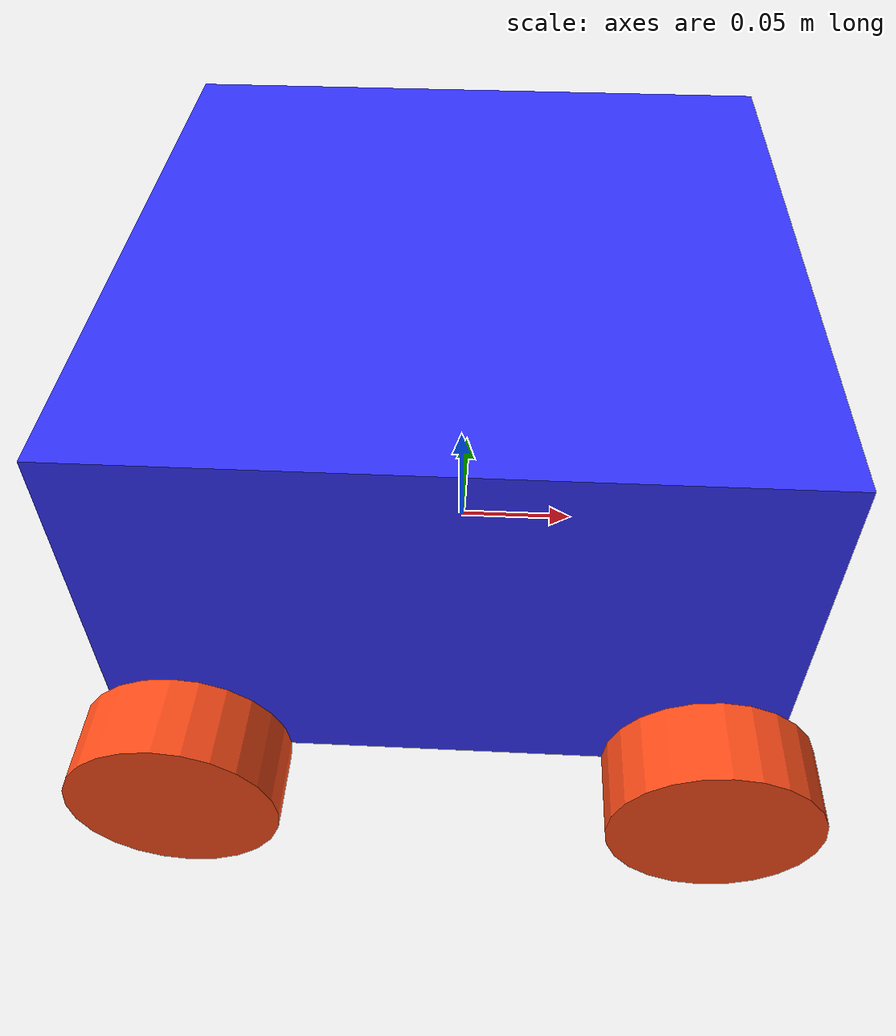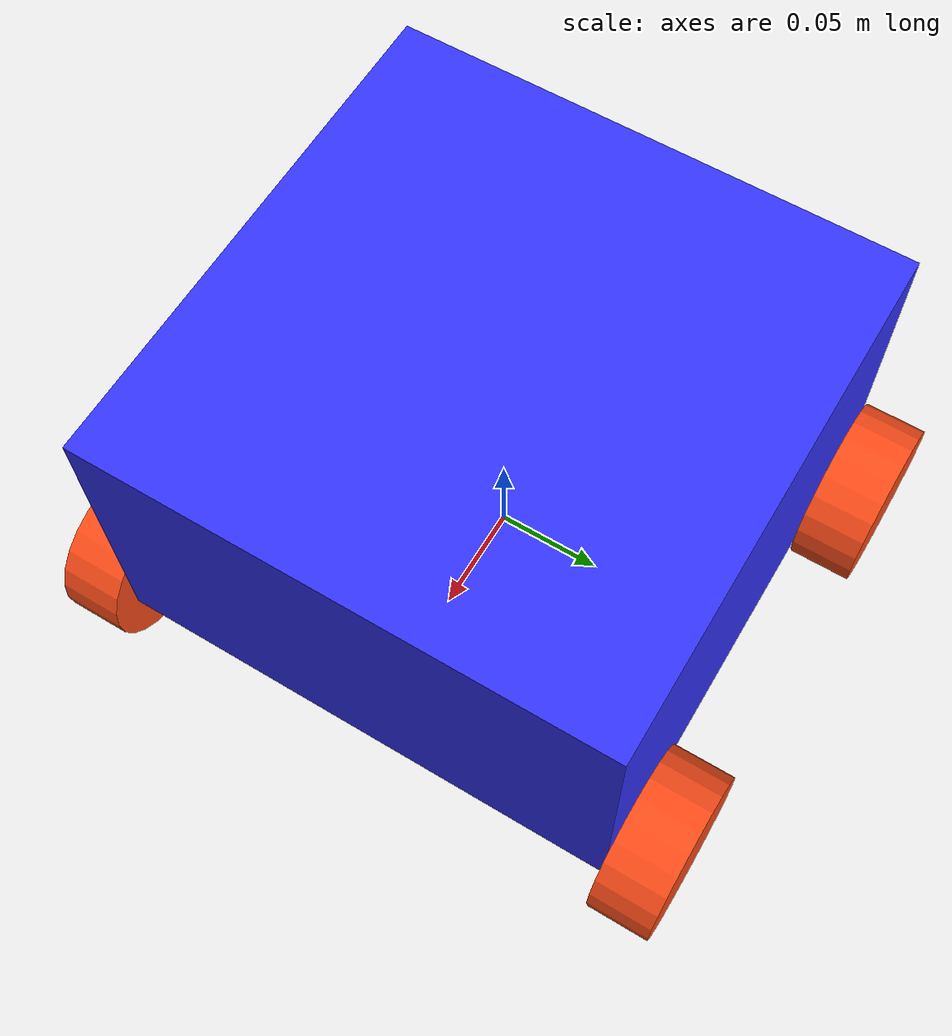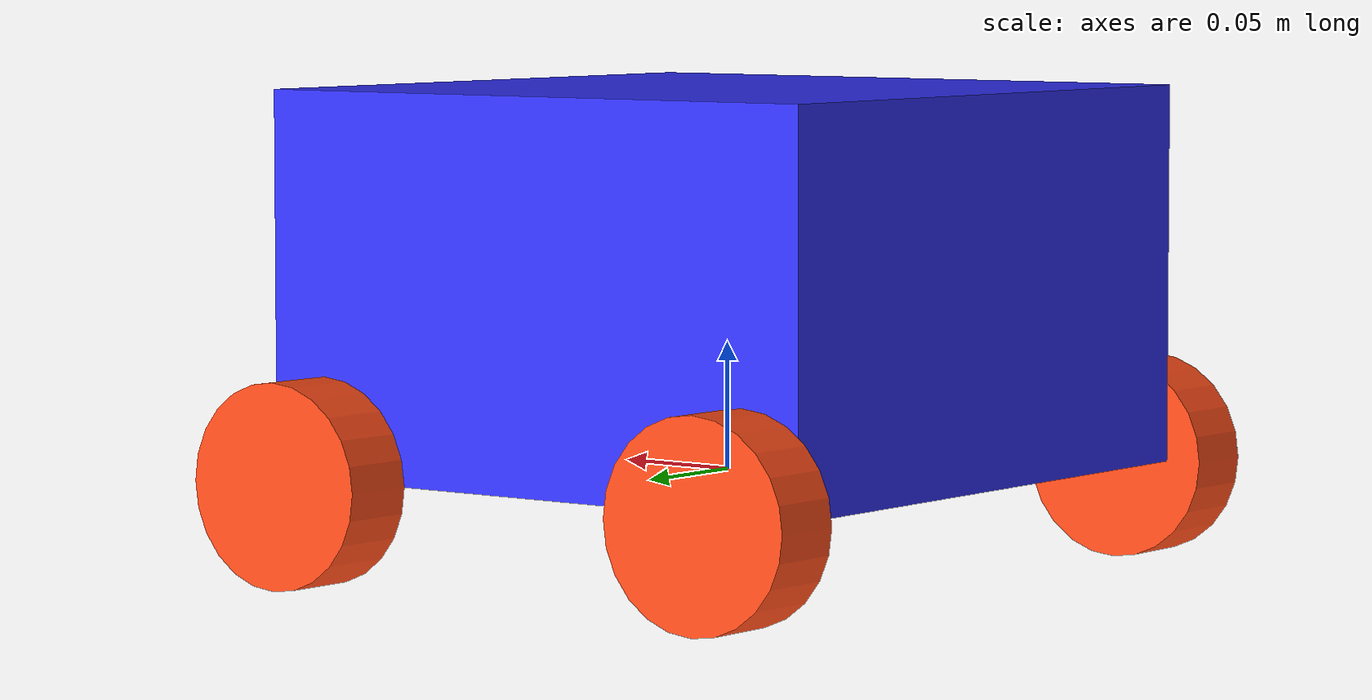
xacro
<?xml version="1.0"?>
<robot xmlns:xacro="http://www.ros.org/wiki/xacro">

    <xacro:include filename="inertial_macros.xacro"/>

    <material name="white">
        <color rgba="1 1 1 1" />
    </material>

    <material name="orange">
        <color rgba="1 0.3 0.1 1"/>
    </material>

    <material name="blue">
        <color rgba="0.2 0.2 1 1"/>
    </material>

    <material name="black">
        <color rgba="0 0 0 1"/>
    </material>

    <!-- BASE LINK -->

    <link name="base_link">

    </link>

    <joint name="base_footprint_joint" type="fixed">
        <parent link="base_link"/>
        <child link="base_footprint"/>
        <origin xyz="0 0 0" rpy="0 0 0"/>
    </joint>

    <link name="base_footprint">
    </link>

    <joint name="chassis_joint" type="fixed">
        <parent link="base_link"/>
        <child link="chassis"/>
        <origin xyz="0 0 0"/>
    </joint>

    <link name="chassis">
        <visual>
            <origin xyz="0 0 0.075"/>
            <geometry>
                <box size="0.25 0.25 0.15"/>
            </geometry>
            <material name="blue"/>
        </visual>
        <collision>
            <origin xyz="0 0 0.075"/>
            <geometry>
                <box size="0.25 0.25 0.15"/>
            </geometry>
        </collision>
        <xacro:inertial_box mass="0.5" x="0.25" y="0.25" z="0.15">
            <origin xyz="0 0 0.075" rpy="0 0 0"/>
        </xacro:inertial_box>
    </link>

    <!-- LEFT FRONT WHEEL LINK -->

    <joint name="left_front_wheel_joint" type="continuous">
        <parent link="base_link"/>
        <child link="left_front_wheel"/>
        <origin xyz="0.1 0.14 0" rpy="-${pi/2} 0 0" />
        <axis xyz="0 0 1"/>
    </joint>

    <link name="left_front_wheel">
        <visual>
            <geometry>
                <cylinder radius="0.04" length="0.03"/>
            </geometry>
            <material name="orange"/>
        </visual>
        <collision>
            <geometry>
                <cylinder radius="0.04" length="0.03"/>
            </geometry>
        </collision>
        <xacro:inertial_cylinder mass="0.1" length="0.03" radius="0.04">
            <origin xyz="0 0 0" rpy="0 0 0"/>
        </xacro:inertial_cylinder>

    </link>

    <!-- RIGHT WHEEL LINK -->

    <joint name="right_front_wheel_joint" type="continuous">
        <parent link="base_link"/>
        <child link="right_front_wheel"/>
        <origin xyz="0.1 -0.14 0" rpy="${pi/2} 0 0" />
        <axis xyz="0 0 -1"/>
    </joint>

    <link name="right_front_wheel">
        <visual>
            <geometry>
                <cylinder radius="0.04" length="0.03"/>
            </geometry>
            <material name="orange"/>
        </visual>
        <collision>
            <geometry>
                <cylinder radius="0.04" length="0.03"/>
            </geometry>
        </collision>
        <xacro:inertial_cylinder mass="0.1" length="0.03" radius="0.04">
            <origin xyz="0 0 0" rpy="0 0 0"/>
        </xacro:inertial_cylinder>

    </link>

    <!-- LEFT BACK WHEEL LINK -->

    <joint name="left_back_wheel_joint" type="continuous">
        <parent link="base_link"/>
        <child link="left_back_wheel"/>
        <origin xyz="-0.1 0.14 0" rpy="-${pi/2} 0 0" />
        <axis xyz="0 0 1"/>
    </joint>

    <link name="left_back_wheel">
        <visual>
            <geometry>
                <cylinder radius="0.04" length="0.03"/>
            </geometry>
            <material name="orange"/>
        </visual>
        <collision>
            <geometry>
                <cylinder radius="0.04" length="0.03"/>
            </geometry>
        </collision>
        <xacro:inertial_cylinder mass="0.1" length="0.03" radius="0.04">
            <origin xyz="0 0 0" rpy="0 0 0"/>
        </xacro:inertial_cylinder>

    </link>

    <!-- RIGHT BACK WHEEL LINK -->

    <joint name="right_back_wheel_joint" type="continuous">
        <parent link="base_link"/>
        <child link="right_back_wheel"/>
        <origin xyz="-0.1 -0.14 0" rpy="${pi/2} 0 0" />
        <axis xyz="0 0 -1"/>
    </joint>

    <link name="right_back_wheel">
        <visual>
            <geometry>
                <cylinder radius="0.04" length="0.03"/>
            </geometry>
            <material name="orange"/>
        </visual>
        <collision>
            <geometry>
                <cylinder radius="0.04" length="0.03"/>
            </geometry>
        </collision>
        <xacro:inertial_cylinder mass="0.1" length="0.03" radius="0.04">
            <origin xyz="0 0 0" rpy="0 0 0"/>
        </xacro:inertial_cylinder>

    </link>
</robot>
